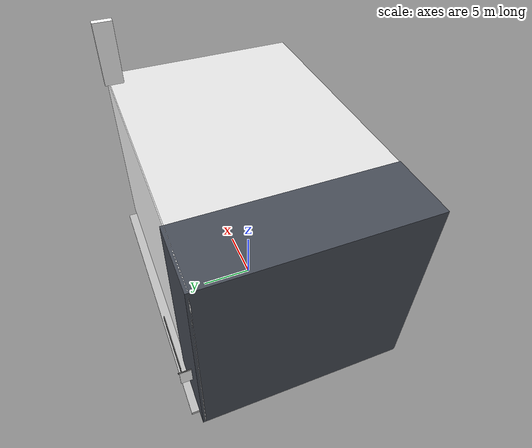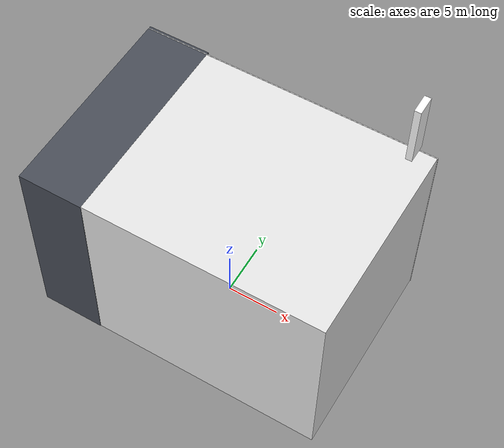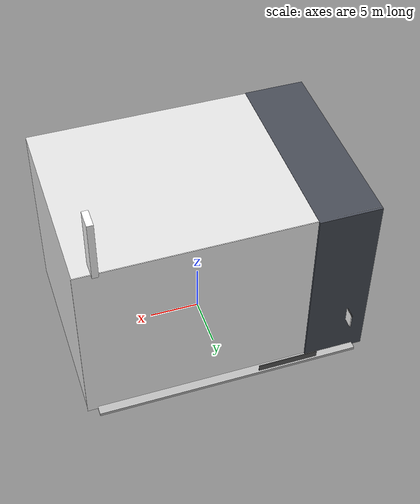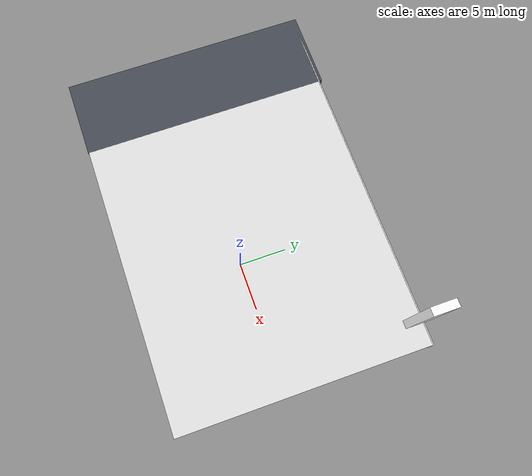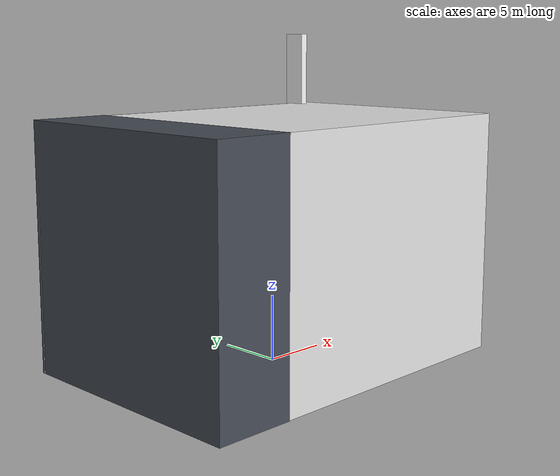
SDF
<?xml version="1.0" ?>
<sdf version="1.8">
  <model name="cathay_bank_building">
    <static>true</static>
    <link name="cathay_link">

      <!-- Collision -->
      <collision name="cathay_main_col">
        <pose>0 0 9.25 0 0 0</pose>
        <geometry>
          <box><size>28.0 19.0 18.5</size></box>
        </geometry>
      </collision>

      <!-- Main Building Mass -->
      <visual name="cathay_body_vis">
        <pose>0 0 9.25 0 0 0</pose>
        <geometry>
          <box><size>27.9 18.9 18.48</size></box>
        </geometry>
        <material>
          <ambient>0.85 0.85 0.85 1</ambient>
          <diffuse>0.9 0.9 0.9 1</diffuse>
          <pbr>
            <metal>
              <roughness>0.5</roughness>
              <metalness>0.05</metalness>
            </metal>
          </pbr>
        </material>
      </visual>

      <!-- Front Photo-Real Facade (X: 28m, Z: 18.5m) -->
      <visual name="cathay_facade_vis">
        <pose>0 9.46 9.25 0 0 0</pose>
        <geometry>
          <box><size>28.0 0.08 18.5</size></box>
        </geometry>
        <material>
          <diffuse>1 1 1 1</diffuse>
          <pbr>
            <metal>
              <albedo_map>model://cathay_bank_building/materials/textures/cathay_facade.png</albedo_map>
              <roughness>0.35</roughness>
              <metalness>0.1</metalness>
            </metal>
          </pbr>
        </material>
      </visual>

      <!-- Left Slate Grey Architectural Wing (左側深灰色垂直裝飾板) -->
      <visual name="cathay_slate_left">
        <pose>-11.0 0.1 9.25 0 0 0</pose>
        <geometry>
          <box><size>6.0 19.2 18.5</size></box>
        </geometry>
        <material>
          <ambient>0.22 0.25 0.28 1</ambient>
          <diffuse>0.28 0.3 0.34 1</diffuse>
          <pbr>
            <metal>
              <roughness>0.6</roughness>
              <metalness>0.1</metalness>
            </metal>
          </pbr>
        </material>
      </visual>

      <!-- 1F 門前步道與無障礙坡道 (Entrance Arcade & Ramp) -->
      <visual name="cathay_walkway">
        <pose>0 9.8 0.15 0 0 0</pose>
        <geometry>
          <box><size>26.0 1.2 0.3</size></box>
        </geometry>
        <material>
          <ambient>0.7 0.7 0.7 1</ambient>
          <diffuse>0.75 0.75 0.75 1</diffuse>
        </material>
      </visual>
      <visual name="cathay_ramp_railing">
        <pose>-6.0 10.2 0.65 0 0 0</pose>
        <geometry>
          <box><size>6.0 0.08 0.7</size></box>
        </geometry>
        <material>
          <ambient>0.3 0.3 0.3 1</ambient>
          <diffuse>0.35 0.35 0.35 1</diffuse>
        </material>
      </visual>

      <!-- 側懸國泰世華綠樹招牌 (Protruding Green Tree Sign) -->
      <visual name="cathay_sign_arm">
        <pose>-12.0 10.1 5.8 0 0 0</pose>
        <geometry>
          <box><size>0.08 1.4 0.08</size></box>
        </geometry>
        <material>
          <ambient>0.2 0.2 0.2 1</ambient>
          <diffuse>0.25 0.25 0.25 1</diffuse>
        </material>
      </visual>
      <visual name="cathay_protruding_sign">
        <pose>-12.0 10.1 5.0 0 0 0</pose>
        <geometry>
          <box><size>0.12 1.2 1.6</size></box>
        </geometry>
        <material>
          <diffuse>1 1 1 1</diffuse>
          <pbr>
            <metal>
              <albedo_map>model://cathay_bank_building/materials/textures/cathay_protruding_sign.png</albedo_map>
              <roughness>0.3</roughness>
              <metalness>0.1</metalness>
            </metal>
          </pbr>
        </material>
      </visual>

      <!-- 屋頂垂直黃色國泰企業標誌塔 (Rooftop Vertical Sign Tower) -->
      <visual name="cathay_roof_sign">
        <pose>12.0 9.0 21.5 0 0 0</pose>
        <geometry>
          <box><size>0.6 1.8 6.0</size></box>
        </geometry>
        <material>
          <diffuse>1 1 1 1</diffuse>
          <emissive>0.85 0.75 0.1 1</emissive>
          <pbr>
            <metal>
              <albedo_map>model://cathay_bank_building/materials/textures/cathay_roof_sign.png</albedo_map>
              <roughness>0.2</roughness>
              <metalness>0.1</metalness>
            </metal>
          </pbr>
        </material>
      </visual>

    </link>
  </model>
</sdf>
